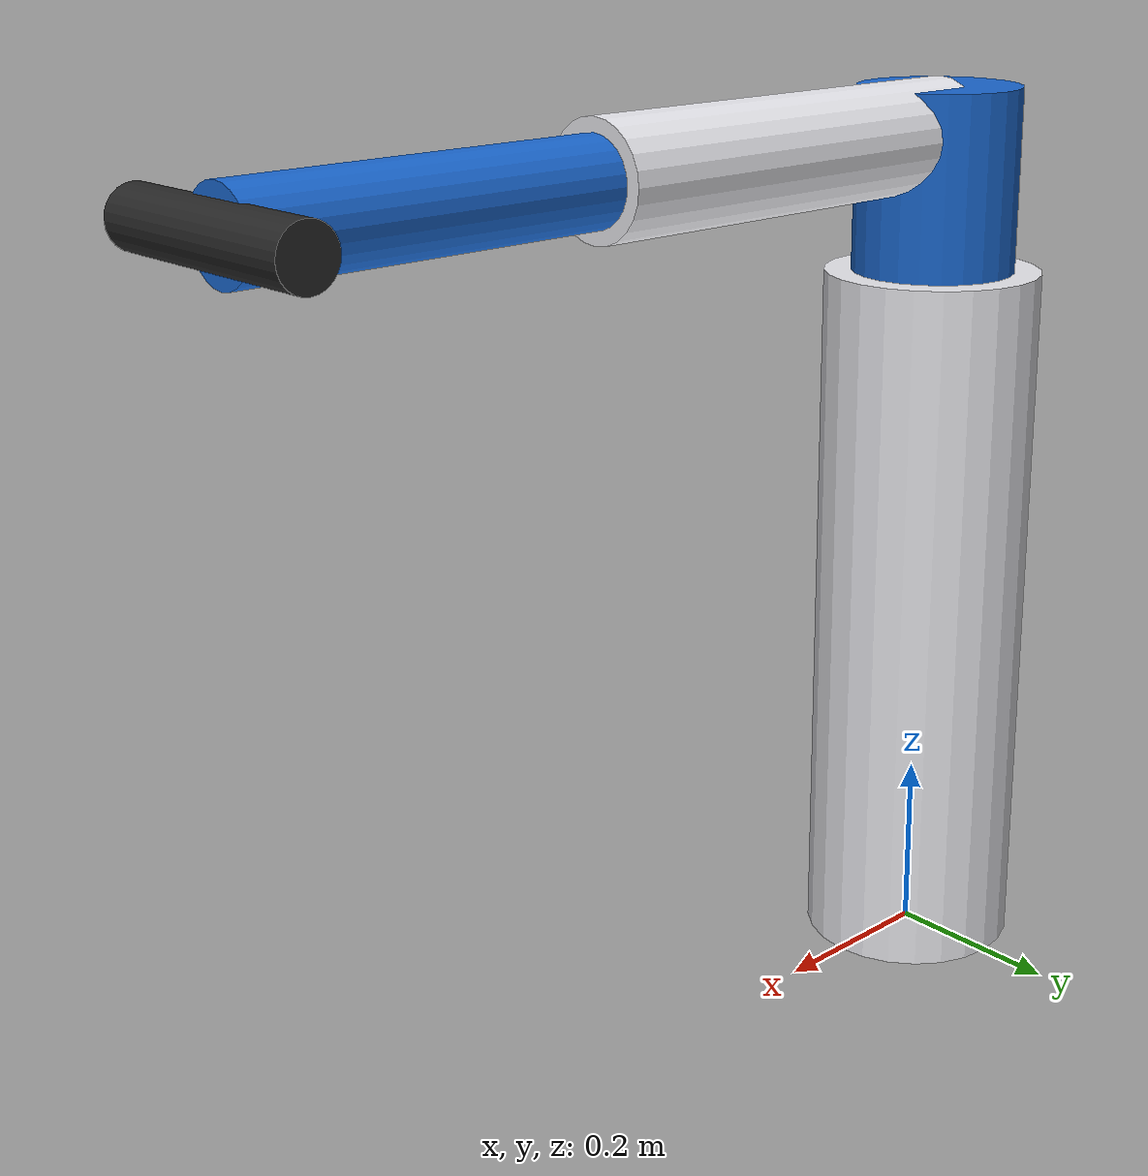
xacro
<?xml version="1.0"?>
<robot name="washroom_assist_arm" xmlns:xacro="http://www.ros.org/wiki/xacro">

  <!-- CONSTANTS & PARAMETERS                                              -->
  <xacro:property name="PI" value="3.141592653589793"/>
  <xacro:property name="base_mass" value="15.0"/>
  <xacro:property name="link1_mass" value="4.5"/>
  <xacro:property name="link2_mass" value="3.2"/>
  <xacro:property name="handle_mass" value="1.0"/>

  <!-- Material Palette -->
  <material name="industrial_white">
    <color rgba="0.9 0.9 0.92 1.0"/>
  </material>
  <material name="anodized_blue">
    <color rgba="0.1 0.4 0.8 1.0"/>
  </material>
  <material name="safety_yellow">
    <color rgba="1.0 0.8 0.0 1.0"/>
  </material>
  <material name="padded_black">
    <color rgba="0.15 0.15 0.15 1.0"/>
  </material>

  <!-- Macro for Cylinder Inertia -->
  <xacro:macro name="cylinder_inertia" params="m r h">
    <inertia ixx="${(1/12) * m * (3*r*r + h*h)}" ixy="0.0" ixz="0.0"
             iyy="${(1/12) * m * (3*r*r + h*h)}" iyz="0.0"
             izz="${(1/2) * m * r * r}"/>
  </xacro:macro>

  <!-- KINEMATIC CHAIN                                                     -->

  <!-- World Frame Ground Anchor -->
  <link name="world"/>

  <joint name="world_to_base_joint" type="fixed">
    <parent link="world"/>
    <child link="base_link"/>
    <origin xyz="0.0 0.0 0.0" rpy="0 0 0"/>
  </joint>

  <!-- Base Pillar Link -->
  <link name="base_link">
    <visual>
      <origin xyz="0 0 0.4" rpy="0 0 0"/>
      <geometry>
        <cylinder radius="0.12" length="0.8"/>
      </geometry>
      <material name="industrial_white"/>
    </visual>
    <collision>
      <origin xyz="0 0 0.4" rpy="0 0 0"/>
      <geometry>
        <cylinder radius="0.12" length="0.8"/>
      </geometry>
    </collision>
    <inertial>
      <origin xyz="0 0 0.4" rpy="0 0 0"/>
      <mass value="${base_mass}"/>
      <xacro:cylinder_inertia m="${base_mass}" r="0.12" h="0.8"/>
    </inertial>
  </link>

  <!-- Joint 1: Base Turret Rotation (Yaw) -->
  <joint name="shoulder_yaw_joint" type="revolute">
    <parent link="base_link"/>
    <child link="shoulder_link"/>
    <origin xyz="0 0 0.8" rpy="0 0 0"/>
    <axis xyz="0 0 1"/>
    <limit lower="-1.5708" upper="1.5708" effort="120.0" velocity="0.8"/>
    <dynamics damping="10.0" friction="2.0"/>
  </joint>

  <link name="shoulder_link">
    <visual>
      <origin xyz="0 0 0.1" rpy="0 0 0"/>
      <geometry>
        <cylinder radius="0.09" length="0.2"/>
      </geometry>
      <material name="anodized_blue"/>
    </visual>
    <collision>
      <origin xyz="0 0 0.1" rpy="0 0 0"/>
      <geometry>
        <cylinder radius="0.09" length="0.2"/>
      </geometry>
    </collision>
    <inertial>
      <origin xyz="0 0 0.1" rpy="0 0 0"/>
      <mass value="2.0"/>
      <xacro:cylinder_inertia m="2.0" r="0.09" h="0.2"/>
    </inertial>
  </link>

  <!-- Joint 2: Upper Arm Elevation (Pitch) -->
  <joint name="shoulder_pitch_joint" type="revolute">
    <parent link="shoulder_link"/>
    <child link="upper_arm_link"/>
    <origin xyz="0 0 0.15" rpy="0 0 0"/>
    <axis xyz="0 1 0"/>
    <limit lower="-0.7854" upper="1.309" effort="200.0" velocity="0.5"/>
    <dynamics damping="15.0" friction="5.0"/>
  </joint>

  <link name="upper_arm_link">
    <visual>
      <origin xyz="0.25 0 0" rpy="0 1.5708 0"/>
      <geometry>
        <cylinder radius="0.06" length="0.5"/>
      </geometry>
      <material name="industrial_white"/>
    </visual>
    <collision>
      <origin xyz="0.25 0 0" rpy="0 1.5708 0"/>
      <geometry>
        <cylinder radius="0.06" length="0.5"/>
      </geometry>
    </collision>
    <inertial>
      <origin xyz="0.25 0 0" rpy="0 0 0"/>
      <mass value="${link1_mass}"/>
      <xacro:cylinder_inertia m="${link1_mass}" r="0.06" h="0.5"/>
    </inertial>
  </link>

  <!-- Joint 3: Forearm Extension (Pitch) -->
  <joint name="elbow_pitch_joint" type="revolute">
    <parent link="upper_arm_link"/>
    <child link="forearm_link"/>
    <origin xyz="0.5 0 0" rpy="0 0 0"/>
    <axis xyz="0 1 0"/>
    <limit lower="-1.5708" upper="0.7854" effort="150.0" velocity="0.5"/>
    <dynamics damping="12.0" friction="3.0"/>
  </joint>

  <link name="forearm_link">
    <visual>
      <origin xyz="0.2 0 0" rpy="0 1.5708 0"/>
      <geometry>
        <cylinder radius="0.045" length="0.4"/>
      </geometry>
      <material name="anodized_blue"/>
    </visual>
    <collision>
      <origin xyz="0.2 0 0" rpy="0 1.5708 0"/>
      <geometry>
        <cylinder radius="0.045" length="0.4"/>
      </geometry>
    </collision>
    <inertial>
      <origin xyz="0.2 0 0" rpy="0 0 0"/>
      <mass value="${link2_mass}"/>
      <xacro:cylinder_inertia m="${link2_mass}" r="0.045" h="0.4"/>
    </inertial>
  </link>

  <!-- End-Effector Handle Joint (Fixed End-Grip) -->
  <joint name="handle_joint" type="fixed">
    <parent link="forearm_link"/>
    <child link="assist_handle_link"/>
    <origin xyz="0.4 0 0" rpy="0 0 0"/>
  </joint>

  <link name="assist_handle_link">
    <visual>
      <origin xyz="0 0 0" rpy="1.5708 0 0"/>
      <geometry>
        <cylinder radius="0.03" length="0.25"/>
      </geometry>
      <material name="padded_black"/>
    </visual>
    <collision>
      <origin xyz="0 0 0" rpy="1.5708 0 0"/>
      <geometry>
        <cylinder radius="0.03" length="0.25"/>
      </geometry>
    </collision>
    <inertial>
      <origin xyz="0 0 0" rpy="0 0 0"/>
      <mass value="${handle_mass}"/>
      <xacro:cylinder_inertia m="${handle_mass}" r="0.03" h="0.25"/>
    </inertial>
  </link>

  <!-- End-Effector Reference Frame for Kinematic Solvers -->
  <joint name="ee_frame_joint" type="fixed">
    <parent link="assist_handle_link"/>
    <child link="ee_link"/>
    <origin xyz="0 0 0" rpy="0 0 0"/>
  </joint>

  <link name="ee_link"/>

</robot>
